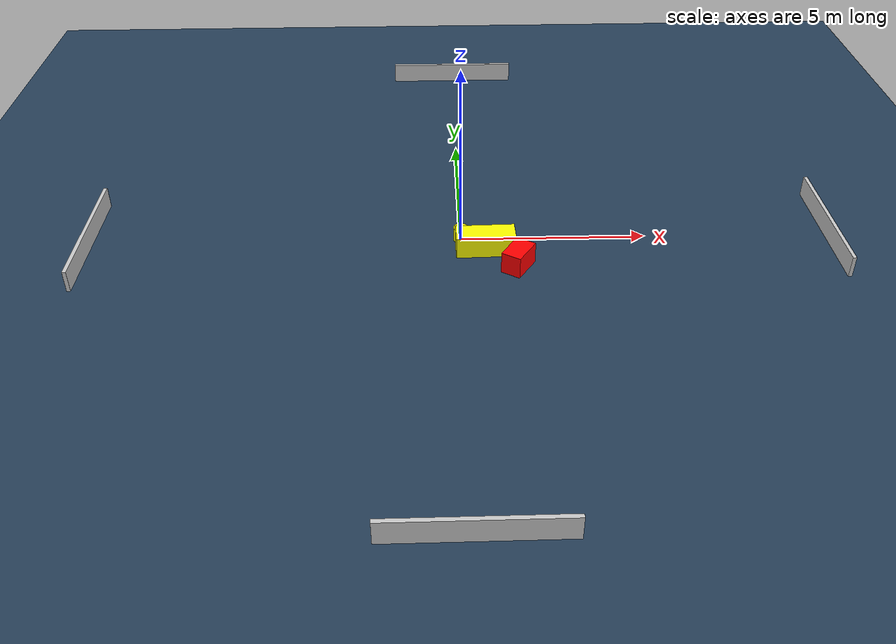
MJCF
<?xml version="1.0" ?>
<mujoco model="generated_environment">
  <option timestep="0.01" integrator="RK4" cone="elliptic"/>
  <default>
    <geom density="1"/>
  </default>
  <asset>
    <texture builtin="gradient" height="3072" name="skybox" rgb1="0.3 0.5 0.7" rgb2="0 0 0" type="skybox" width="512"/>
    <texture builtin="checker" height="300" name="groundplane" rgb1="0.2 0.3 0.4" rgb2="0.1 0.2 0.3" type="2d" width="300"/>
    <material name="groundplane" reflectance="0.2" texrepeat="5 5" texture="groundplane"/>
  </asset>
  <worldbody>
    <light dir="0 0 -1" directional="true" pos="0 0 1.5"/>
    <geom condim="3" friction="0.5 0.005 0.001" material="groundplane" name="floor" pos="0 0 0" size="0 0 0.05" type="plane"/>
    <body name="walls">
      <geom name="wall_1" condim="4" pos="-10.0 0.0 0.3" rgba="0.800000011920929 0.800000011920929 0.800000011920929 1.0" size="0.05 2.0 0.3" type="box"/>
      <geom name="wall_2" condim="4" pos="10.0 0.0 0.3" rgba="0.800000011920929 0.800000011920929 0.800000011920929 1.0" size="0.05 2.0 0.3" type="box"/>
      <geom name="wall_3" condim="4" pos="0.0 -10.0 0.3" rgba="0.800000011920929 0.800000011920929 0.800000011920929 1.0" size="2.0 0.05 0.3" type="box"/>
      <geom name="wall_4" condim="4" pos="0.0 10.0 0.3" rgba="0.800000011920929 0.800000011920929 0.800000011920929 1.0" size="2.0 0.05 0.3" type="box"/>
    </body>
    <body name="robot">
      <joint name="joint_x" type="slide" pos="0 0 0" axis="1 0 0"/>
      <joint name="joint_y" type="slide" pos="0 0 0" axis="0 1 0"/>
      <geom name="robot" type="cylinder" pos="0.0 0.0 0.2" size="0.2 0.2 0.0" mass="5.0" friction="1.0 0.005 0.0001" condim="4" rgba="1.0 1.0 0.0 1.0"/>
    </body>
    <body name="obstacle_1_movable">
      <geom name="obstacle_1_movable" condim="4" pos="0.6391053375650938 -0.5233883961347632 0.3" euler="0 0 1.4812093349081978" friction="0.0 0.005 0.001" rgba="1.0 1.0 0.0 1.0" size="0.7916923426471028 0.3216243898572288 0.3" type="box" mass="0.1"/>
      <joint type="free"/>
    </body>
    <body name="obstacle_2_static">
      <geom name="obstacle_2_static" condim="4" pos="1.4593579209419678 -1.3073768878261038 0.3" euler="0 0 237.19791965322418" friction="0.0 0.005 0.001" rgba="1.0 0.0 0.0 1.0" size="0.4236820769665122 0.2746672852544108 0.3" type="box"/>
    </body>
  </worldbody>
  <actuator>
    <motor name="actuator_x" joint="joint_x" gear="1" ctrlrange="-1 1"/>
    <motor name="actuator_y" joint="joint_y" gear="1" ctrlrange="-1 1"/>
  </actuator>
</mujoco>
